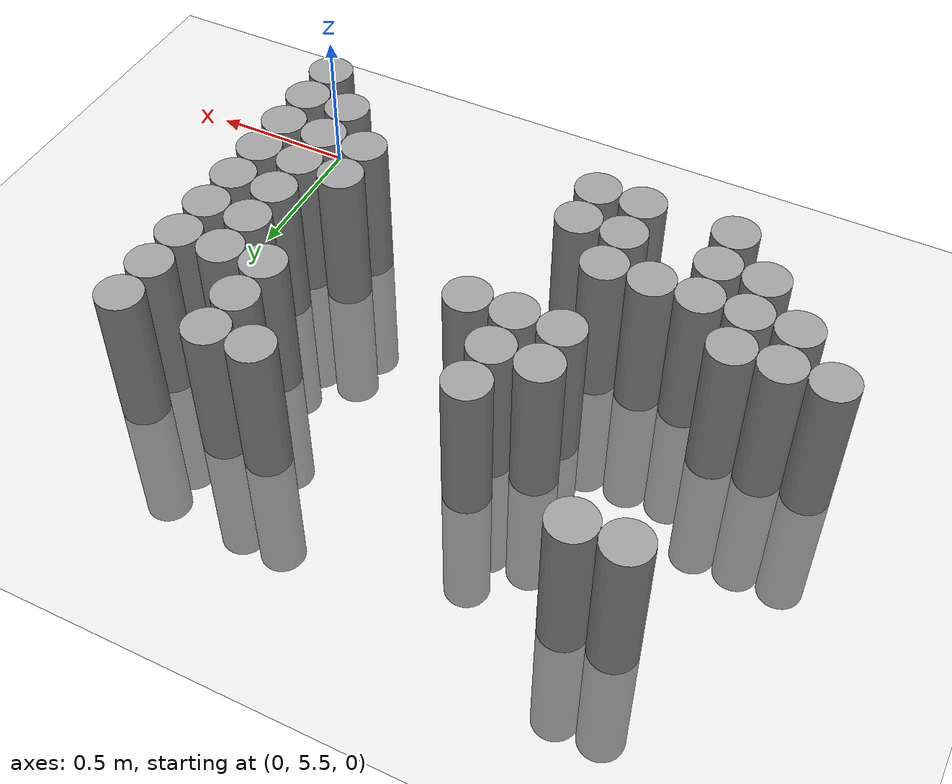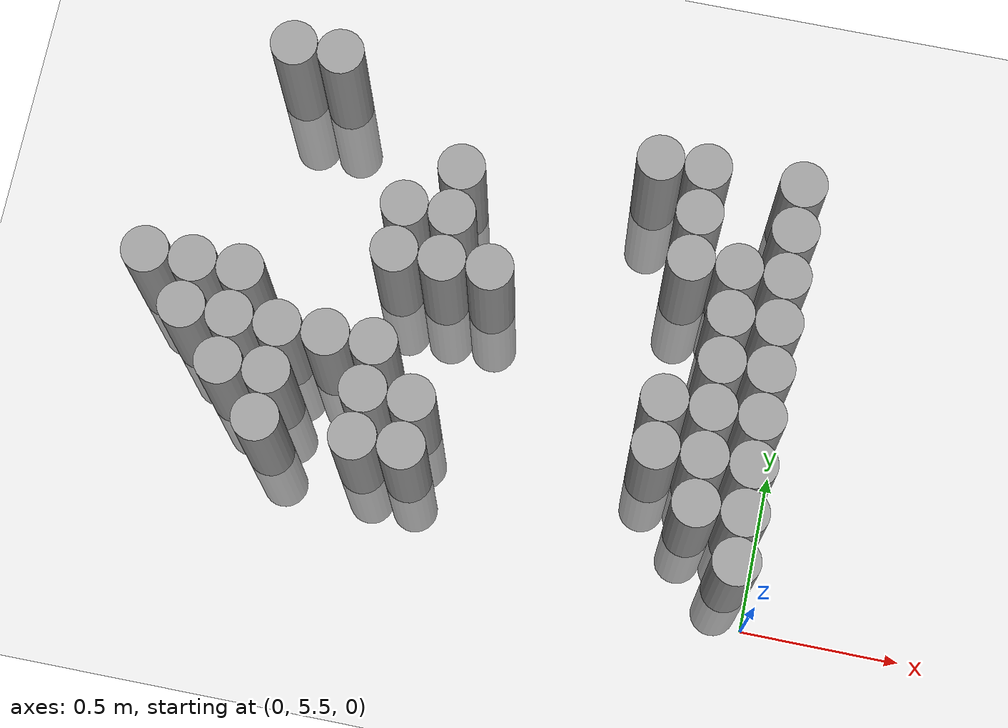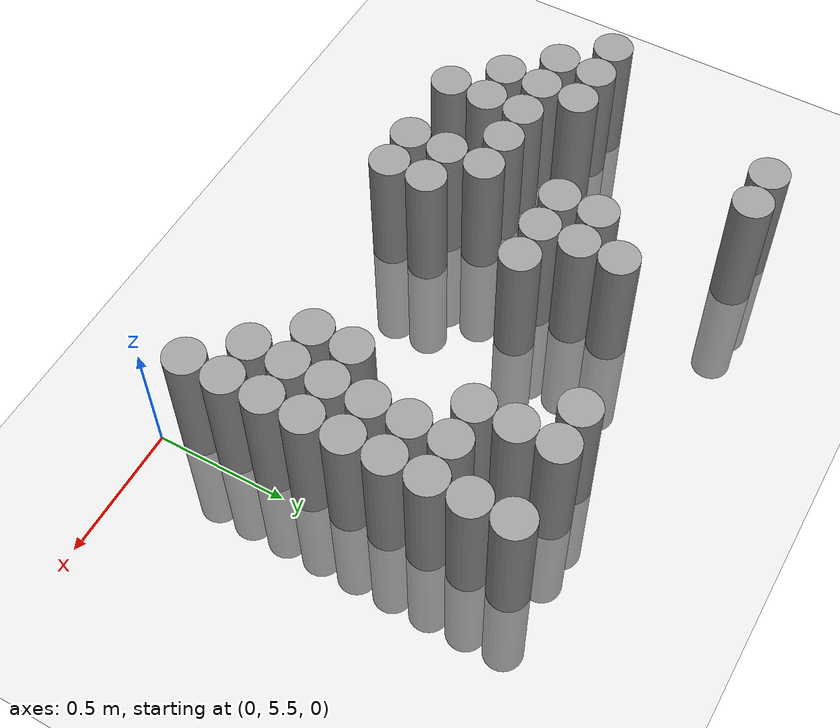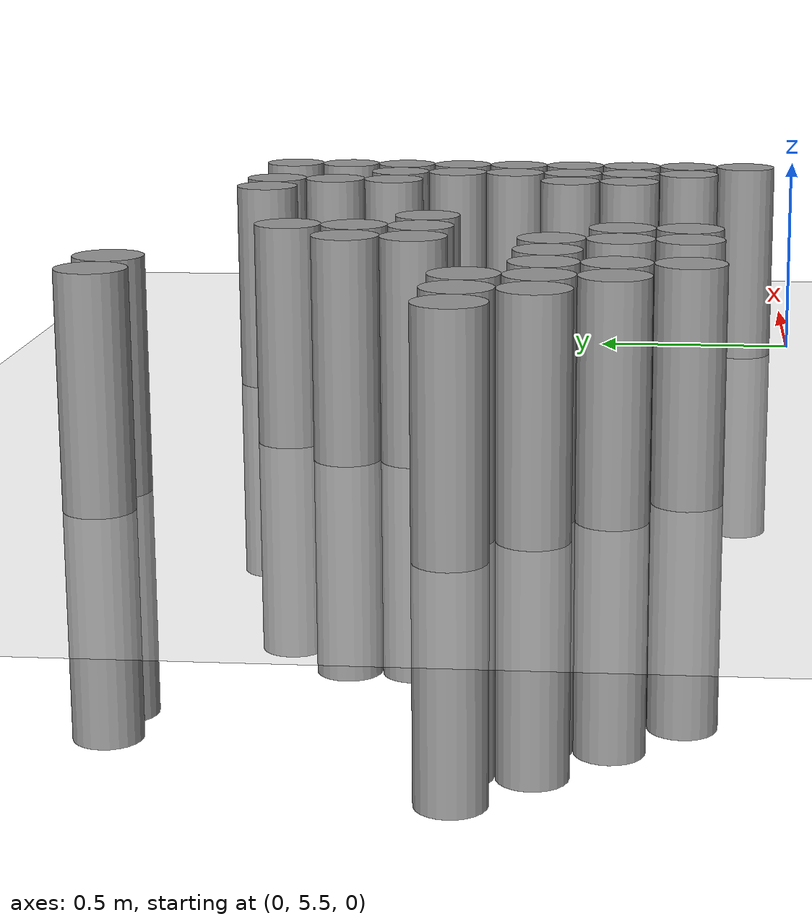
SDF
<sdf version="1.6">
 <world name="default">
  <model name="ground_plane">
   <static>1</static>
   <link name="link">
    <collision name="collision">
     <geometry><plane><normal>0 0 1</normal><size>100 100</size></plane></geometry>
     <surface><friction><ode><mu>100</mu><mu2>50</mu2></ode></friction></surface>
    </collision>
    <visual name="visual">
     <cast_shadows>0</cast_shadows>
     <geometry><plane><normal>0 0 1</normal><size>100 100</size></plane></geometry>
     <material>
      <script><uri>file://media/materials/scripts/gazebo.material</uri><name>Gazebo/Grey</name></script>
     </material>
    </visual>
   </link>
  </model>
  <model name="unit_cylinder_184">
   <pose>-2.025000 6.225000 0.000000 0.000000 0.000000 0.000000</pose>
   <link name="link">
    <inertial>
     <mass>1</mass>
     <inertia><ixx>0.145833</ixx><ixy>0</ixy><ixz>0</ixz><iyy>0.145833</iyy><iyz>0</iyz><izz>0.125</izz></inertia>
    </inertial>
    <collision name="collision">
     <geometry><cylinder><radius>0.075000</radius><length>1</length></cylinder></geometry>
    </collision>
    <visual name="visual">
     <geometry><cylinder><radius>0.075000</radius><length>1</length></cylinder></geometry>
     <material>
      <script><name>Gazebo/Grey</name><uri>file://media/materials/scripts/gazebo.material</uri></script>
     </material>
    </visual>
   </link>
  </model>
  <model name="unit_cylinder_191">
   <pose>-1.875000 6.075000 0.000000 0.000000 0.000000 0.000000</pose>
   <link name="link">
    <inertial>
     <mass>1</mass>
     <inertia><ixx>0.145833</ixx><ixy>0</ixy><ixz>0</ixz><iyy>0.145833</iyy><iyz>0</iyz><izz>0.125</izz></inertia>
    </inertial>
    <collision name="collision">
     <geometry><cylinder><radius>0.075000</radius><length>1</length></cylinder></geometry>
    </collision>
    <visual name="visual">
     <geometry><cylinder><radius>0.075000</radius><length>1</length></cylinder></geometry>
     <material>
      <script><name>Gazebo/Grey</name><uri>file://media/materials/scripts/gazebo.material</uri></script>
     </material>
    </visual>
   </link>
  </model>
  <model name="unit_cylinder_192">
   <pose>-1.875000 6.225000 0.000000 0.000000 0.000000 0.000000</pose>
   <link name="link">
    <inertial>
     <mass>1</mass>
     <inertia><ixx>0.145833</ixx><ixy>0</ixy><ixz>0</ixz><iyy>0.145833</iyy><iyz>0</iyz><izz>0.125</izz></inertia>
    </inertial>
    <collision name="collision">
     <geometry><cylinder><radius>0.075000</radius><length>1</length></cylinder></geometry>
    </collision>
    <visual name="visual">
     <geometry><cylinder><radius>0.075000</radius><length>1</length></cylinder></geometry>
     <material>
      <script><name>Gazebo/Grey</name><uri>file://media/materials/scripts/gazebo.material</uri></script>
     </material>
    </visual>
   </link>
  </model>
  <model name="unit_cylinder_197">
   <pose>-1.725000 5.925000 0.000000 0.000000 0.000000 0.000000</pose>
   <link name="link">
    <inertial>
     <mass>1</mass>
     <inertia><ixx>0.145833</ixx><ixy>0</ixy><ixz>0</ixz><iyy>0.145833</iyy><iyz>0</iyz><izz>0.125</izz></inertia>
    </inertial>
    <collision name="collision">
     <geometry><cylinder><radius>0.075000</radius><length>1</length></cylinder></geometry>
    </collision>
    <visual name="visual">
     <geometry><cylinder><radius>0.075000</radius><length>1</length></cylinder></geometry>
     <material>
      <script><name>Gazebo/Grey</name><uri>file://media/materials/scripts/gazebo.material</uri></script>
     </material>
    </visual>
   </link>
  </model>
  <model name="unit_cylinder_198">
   <pose>-1.725000 6.075000 0.000000 0.000000 0.000000 0.000000</pose>
   <link name="link">
    <inertial>
     <mass>1</mass>
     <inertia><ixx>0.145833</ixx><ixy>0</ixy><ixz>0</ixz><iyy>0.145833</iyy><iyz>0</iyz><izz>0.125</izz></inertia>
    </inertial>
    <collision name="collision">
     <geometry><cylinder><radius>0.075000</radius><length>1</length></cylinder></geometry>
    </collision>
    <visual name="visual">
     <geometry><cylinder><radius>0.075000</radius><length>1</length></cylinder></geometry>
     <material>
      <script><name>Gazebo/Grey</name><uri>file://media/materials/scripts/gazebo.material</uri></script>
     </material>
    </visual>
   </link>
  </model>
  <model name="unit_cylinder_199">
   <pose>-1.725000 6.225000 0.000000 0.000000 0.000000 0.000000</pose>
   <link name="link">
    <inertial>
     <mass>1</mass>
     <inertia><ixx>0.145833</ixx><ixy>0</ixy><ixz>0</ixz><iyy>0.145833</iyy><iyz>0</iyz><izz>0.125</izz></inertia>
    </inertial>
    <collision name="collision">
     <geometry><cylinder><radius>0.075000</radius><length>1</length></cylinder></geometry>
    </collision>
    <visual name="visual">
     <geometry><cylinder><radius>0.075000</radius><length>1</length></cylinder></geometry>
     <material>
      <script><name>Gazebo/Grey</name><uri>file://media/materials/scripts/gazebo.material</uri></script>
     </material>
    </visual>
   </link>
  </model>
  <model name="unit_cylinder_200">
   <pose>-1.725000 6.975000 0.000000 0.000000 0.000000 0.000000</pose>
   <link name="link">
    <inertial>
     <mass>1</mass>
     <inertia><ixx>0.145833</ixx><ixy>0</ixy><ixz>0</ixz><iyy>0.145833</iyy><iyz>0</iyz><izz>0.125</izz></inertia>
    </inertial>
    <collision name="collision">
     <geometry><cylinder><radius>0.075000</radius><length>1</length></cylinder></geometry>
    </collision>
    <visual name="visual">
     <geometry><cylinder><radius>0.075000</radius><length>1</length></cylinder></geometry>
     <material>
      <script><name>Gazebo/Grey</name><uri>file://media/materials/scripts/gazebo.material</uri></script>
     </material>
    </visual>
   </link>
  </model>
  <model name="unit_cylinder_208">
   <pose>-1.575000 5.775000 0.000000 0.000000 0.000000 0.000000</pose>
   <link name="link">
    <inertial>
     <mass>1</mass>
     <inertia><ixx>0.145833</ixx><ixy>0</ixy><ixz>0</ixz><iyy>0.145833</iyy><iyz>0</iyz><izz>0.125</izz></inertia>
    </inertial>
    <collision name="collision">
     <geometry><cylinder><radius>0.075000</radius><length>1</length></cylinder></geometry>
    </collision>
    <visual name="visual">
     <geometry><cylinder><radius>0.075000</radius><length>1</length></cylinder></geometry>
     <material>
      <script><name>Gazebo/Grey</name><uri>file://media/materials/scripts/gazebo.material</uri></script>
     </material>
    </visual>
   </link>
  </model>
  <model name="unit_cylinder_209">
   <pose>-1.575000 5.925000 0.000000 0.000000 0.000000 0.000000</pose>
   <link name="link">
    <inertial>
     <mass>1</mass>
     <inertia><ixx>0.145833</ixx><ixy>0</ixy><ixz>0</ixz><iyy>0.145833</iyy><iyz>0</iyz><izz>0.125</izz></inertia>
    </inertial>
    <collision name="collision">
     <geometry><cylinder><radius>0.075000</radius><length>1</length></cylinder></geometry>
    </collision>
    <visual name="visual">
     <geometry><cylinder><radius>0.075000</radius><length>1</length></cylinder></geometry>
     <material>
      <script><name>Gazebo/Grey</name><uri>file://media/materials/scripts/gazebo.material</uri></script>
     </material>
    </visual>
   </link>
  </model>
  <model name="unit_cylinder_210">
   <pose>-1.575000 6.075000 0.000000 0.000000 0.000000 0.000000</pose>
   <link name="link">
    <inertial>
     <mass>1</mass>
     <inertia><ixx>0.145833</ixx><ixy>0</ixy><ixz>0</ixz><iyy>0.145833</iyy><iyz>0</iyz><izz>0.125</izz></inertia>
    </inertial>
    <collision name="collision">
     <geometry><cylinder><radius>0.075000</radius><length>1</length></cylinder></geometry>
    </collision>
    <visual name="visual">
     <geometry><cylinder><radius>0.075000</radius><length>1</length></cylinder></geometry>
     <material>
      <script><name>Gazebo/Grey</name><uri>file://media/materials/scripts/gazebo.material</uri></script>
     </material>
    </visual>
   </link>
  </model>
  <model name="unit_cylinder_211">
   <pose>-1.575000 6.975000 0.000000 0.000000 0.000000 0.000000</pose>
   <link name="link">
    <inertial>
     <mass>1</mass>
     <inertia><ixx>0.145833</ixx><ixy>0</ixy><ixz>0</ixz><iyy>0.145833</iyy><iyz>0</iyz><izz>0.125</izz></inertia>
    </inertial>
    <collision name="collision">
     <geometry><cylinder><radius>0.075000</radius><length>1</length></cylinder></geometry>
    </collision>
    <visual name="visual">
     <geometry><cylinder><radius>0.075000</radius><length>1</length></cylinder></geometry>
     <material>
      <script><name>Gazebo/Grey</name><uri>file://media/materials/scripts/gazebo.material</uri></script>
     </material>
    </visual>
   </link>
  </model>
  <model name="unit_cylinder_224">
   <pose>-1.425000 6.075000 0.000000 0.000000 0.000000 0.000000</pose>
   <link name="link">
    <inertial>
     <mass>1</mass>
     <inertia><ixx>0.145833</ixx><ixy>0</ixy><ixz>0</ixz><iyy>0.145833</iyy><iyz>0</iyz><izz>0.125</izz></inertia>
    </inertial>
    <collision name="collision">
     <geometry><cylinder><radius>0.075000</radius><length>1</length></cylinder></geometry>
    </collision>
    <visual name="visual">
     <geometry><cylinder><radius>0.075000</radius><length>1</length></cylinder></geometry>
     <material>
      <script><name>Gazebo/Grey</name><uri>file://media/materials/scripts/gazebo.material</uri></script>
     </material>
    </visual>
   </link>
  </model>
  <model name="unit_cylinder_238">
   <pose>-1.275000 5.775000 0.000000 0.000000 0.000000 0.000000</pose>
   <link name="link">
    <inertial>
     <mass>1</mass>
     <inertia><ixx>0.145833</ixx><ixy>0</ixy><ixz>0</ixz><iyy>0.145833</iyy><iyz>0</iyz><izz>0.125</izz></inertia>
    </inertial>
    <collision name="collision">
     <geometry><cylinder><radius>0.075000</radius><length>1</length></cylinder></geometry>
    </collision>
    <visual name="visual">
     <geometry><cylinder><radius>0.075000</radius><length>1</length></cylinder></geometry>
     <material>
      <script><name>Gazebo/Grey</name><uri>file://media/materials/scripts/gazebo.material</uri></script>
     </material>
    </visual>
   </link>
  </model>
  <model name="unit_cylinder_239">
   <pose>-1.275000 5.925000 0.000000 0.000000 0.000000 0.000000</pose>
   <link name="link">
    <inertial>
     <mass>1</mass>
     <inertia><ixx>0.145833</ixx><ixy>0</ixy><ixz>0</ixz><iyy>0.145833</iyy><iyz>0</iyz><izz>0.125</izz></inertia>
    </inertial>
    <collision name="collision">
     <geometry><cylinder><radius>0.075000</radius><length>1</length></cylinder></geometry>
    </collision>
    <visual name="visual">
     <geometry><cylinder><radius>0.075000</radius><length>1</length></cylinder></geometry>
     <material>
      <script><name>Gazebo/Grey</name><uri>file://media/materials/scripts/gazebo.material</uri></script>
     </material>
    </visual>
   </link>
  </model>
  <model name="unit_cylinder_240">
   <pose>-1.275000 6.075000 0.000000 0.000000 0.000000 0.000000</pose>
   <link name="link">
    <inertial>
     <mass>1</mass>
     <inertia><ixx>0.145833</ixx><ixy>0</ixy><ixz>0</ixz><iyy>0.145833</iyy><iyz>0</iyz><izz>0.125</izz></inertia>
    </inertial>
    <collision name="collision">
     <geometry><cylinder><radius>0.075000</radius><length>1</length></cylinder></geometry>
    </collision>
    <visual name="visual">
     <geometry><cylinder><radius>0.075000</radius><length>1</length></cylinder></geometry>
     <material>
      <script><name>Gazebo/Grey</name><uri>file://media/materials/scripts/gazebo.material</uri></script>
     </material>
    </visual>
   </link>
  </model>
  <model name="unit_cylinder_241">
   <pose>-1.275000 6.375000 0.000000 0.000000 0.000000 0.000000</pose>
   <link name="link">
    <inertial>
     <mass>1</mass>
     <inertia><ixx>0.145833</ixx><ixy>0</ixy><ixz>0</ixz><iyy>0.145833</iyy><iyz>0</iyz><izz>0.125</izz></inertia>
    </inertial>
    <collision name="collision">
     <geometry><cylinder><radius>0.075000</radius><length>1</length></cylinder></geometry>
    </collision>
    <visual name="visual">
     <geometry><cylinder><radius>0.075000</radius><length>1</length></cylinder></geometry>
     <material>
      <script><name>Gazebo/Grey</name><uri>file://media/materials/scripts/gazebo.material</uri></script>
     </material>
    </visual>
   </link>
  </model>
  <model name="unit_cylinder_242">
   <pose>-1.275000 6.525000 0.000000 0.000000 0.000000 0.000000</pose>
   <link name="link">
    <inertial>
     <mass>1</mass>
     <inertia><ixx>0.145833</ixx><ixy>0</ixy><ixz>0</ixz><iyy>0.145833</iyy><iyz>0</iyz><izz>0.125</izz></inertia>
    </inertial>
    <collision name="collision">
     <geometry><cylinder><radius>0.075000</radius><length>1</length></cylinder></geometry>
    </collision>
    <visual name="visual">
     <geometry><cylinder><radius>0.075000</radius><length>1</length></cylinder></geometry>
     <material>
      <script><name>Gazebo/Grey</name><uri>file://media/materials/scripts/gazebo.material</uri></script>
     </material>
    </visual>
   </link>
  </model>
  <model name="unit_cylinder_249">
   <pose>-1.125000 5.775000 0.000000 0.000000 0.000000 0.000000</pose>
   <link name="link">
    <inertial>
     <mass>1</mass>
     <inertia><ixx>0.145833</ixx><ixy>0</ixy><ixz>0</ixz><iyy>0.145833</iyy><iyz>0</iyz><izz>0.125</izz></inertia>
    </inertial>
    <collision name="collision">
     <geometry><cylinder><radius>0.075000</radius><length>1</length></cylinder></geometry>
    </collision>
    <visual name="visual">
     <geometry><cylinder><radius>0.075000</radius><length>1</length></cylinder></geometry>
     <material>
      <script><name>Gazebo/Grey</name><uri>file://media/materials/scripts/gazebo.material</uri></script>
     </material>
    </visual>
   </link>
  </model>
  <model name="unit_cylinder_250">
   <pose>-1.125000 5.925000 0.000000 0.000000 0.000000 0.000000</pose>
   <link name="link">
    <inertial>
     <mass>1</mass>
     <inertia><ixx>0.145833</ixx><ixy>0</ixy><ixz>0</ixz><iyy>0.145833</iyy><iyz>0</iyz><izz>0.125</izz></inertia>
    </inertial>
    <collision name="collision">
     <geometry><cylinder><radius>0.075000</radius><length>1</length></cylinder></geometry>
    </collision>
    <visual name="visual">
     <geometry><cylinder><radius>0.075000</radius><length>1</length></cylinder></geometry>
     <material>
      <script><name>Gazebo/Grey</name><uri>file://media/materials/scripts/gazebo.material</uri></script>
     </material>
    </visual>
   </link>
  </model>
  <model name="unit_cylinder_251">
   <pose>-1.125000 6.375000 0.000000 0.000000 0.000000 0.000000</pose>
   <link name="link">
    <inertial>
     <mass>1</mass>
     <inertia><ixx>0.145833</ixx><ixy>0</ixy><ixz>0</ixz><iyy>0.145833</iyy><iyz>0</iyz><izz>0.125</izz></inertia>
    </inertial>
    <collision name="collision">
     <geometry><cylinder><radius>0.075000</radius><length>1</length></cylinder></geometry>
    </collision>
    <visual name="visual">
     <geometry><cylinder><radius>0.075000</radius><length>1</length></cylinder></geometry>
     <material>
      <script><name>Gazebo/Grey</name><uri>file://media/materials/scripts/gazebo.material</uri></script>
     </material>
    </visual>
   </link>
  </model>
  <model name="unit_cylinder_252">
   <pose>-1.125000 6.525000 0.000000 0.000000 0.000000 0.000000</pose>
   <link name="link">
    <inertial>
     <mass>1</mass>
     <inertia><ixx>0.145833</ixx><ixy>0</ixy><ixz>0</ixz><iyy>0.145833</iyy><iyz>0</iyz><izz>0.125</izz></inertia>
    </inertial>
    <collision name="collision">
     <geometry><cylinder><radius>0.075000</radius><length>1</length></cylinder></geometry>
    </collision>
    <visual name="visual">
     <geometry><cylinder><radius>0.075000</radius><length>1</length></cylinder></geometry>
     <material>
      <script><name>Gazebo/Grey</name><uri>file://media/materials/scripts/gazebo.material</uri></script>
     </material>
    </visual>
   </link>
  </model>
  <model name="unit_cylinder_253">
   <pose>-1.125000 6.675000 0.000000 0.000000 0.000000 0.000000</pose>
   <link name="link">
    <inertial>
     <mass>1</mass>
     <inertia><ixx>0.145833</ixx><ixy>0</ixy><ixz>0</ixz><iyy>0.145833</iyy><iyz>0</iyz><izz>0.125</izz></inertia>
    </inertial>
    <collision name="collision">
     <geometry><cylinder><radius>0.075000</radius><length>1</length></cylinder></geometry>
    </collision>
    <visual name="visual">
     <geometry><cylinder><radius>0.075000</radius><length>1</length></cylinder></geometry>
     <material>
      <script><name>Gazebo/Grey</name><uri>file://media/materials/scripts/gazebo.material</uri></script>
     </material>
    </visual>
   </link>
  </model>
  <model name="unit_cylinder_254">
   <pose>-0.975000 6.375000 0.000000 0.000000 0.000000 0.000000</pose>
   <link name="link">
    <inertial>
     <mass>1</mass>
     <inertia><ixx>0.145833</ixx><ixy>0</ixy><ixz>0</ixz><iyy>0.145833</iyy><iyz>0</iyz><izz>0.125</izz></inertia>
    </inertial>
    <collision name="collision">
     <geometry><cylinder><radius>0.075000</radius><length>1</length></cylinder></geometry>
    </collision>
    <visual name="visual">
     <geometry><cylinder><radius>0.075000</radius><length>1</length></cylinder></geometry>
     <material>
      <script><name>Gazebo/Grey</name><uri>file://media/materials/scripts/gazebo.material</uri></script>
     </material>
    </visual>
   </link>
  </model>
  <model name="unit_cylinder_263">
   <pose>-0.525000 6.825000 0.000000 0.000000 0.000000 0.000000</pose>
   <link name="link">
    <inertial>
     <mass>1</mass>
     <inertia><ixx>0.145833</ixx><ixy>0</ixy><ixz>0</ixz><iyy>0.145833</iyy><iyz>0</iyz><izz>0.125</izz></inertia>
    </inertial>
    <collision name="collision">
     <geometry><cylinder><radius>0.075000</radius><length>1</length></cylinder></geometry>
    </collision>
    <visual name="visual">
     <geometry><cylinder><radius>0.075000</radius><length>1</length></cylinder></geometry>
     <material>
      <script><name>Gazebo/Grey</name><uri>file://media/materials/scripts/gazebo.material</uri></script>
     </material>
    </visual>
   </link>
  </model>
  <model name="unit_cylinder_270">
   <pose>-0.375000 5.925000 0.000000 0.000000 0.000000 0.000000</pose>
   <link name="link">
    <inertial>
     <mass>1</mass>
     <inertia><ixx>0.145833</ixx><ixy>0</ixy><ixz>0</ixz><iyy>0.145833</iyy><iyz>0</iyz><izz>0.125</izz></inertia>
    </inertial>
    <collision name="collision">
     <geometry><cylinder><radius>0.075000</radius><length>1</length></cylinder></geometry>
    </collision>
    <visual name="visual">
     <geometry><cylinder><radius>0.075000</radius><length>1</length></cylinder></geometry>
     <material>
      <script><name>Gazebo/Grey</name><uri>file://media/materials/scripts/gazebo.material</uri></script>
     </material>
    </visual>
   </link>
  </model>
  <model name="unit_cylinder_271">
   <pose>-0.375000 6.075000 0.000000 0.000000 0.000000 0.000000</pose>
   <link name="link">
    <inertial>
     <mass>1</mass>
     <inertia><ixx>0.145833</ixx><ixy>0</ixy><ixz>0</ixz><iyy>0.145833</iyy><iyz>0</iyz><izz>0.125</izz></inertia>
    </inertial>
    <collision name="collision">
     <geometry><cylinder><radius>0.075000</radius><length>1</length></cylinder></geometry>
    </collision>
    <visual name="visual">
     <geometry><cylinder><radius>0.075000</radius><length>1</length></cylinder></geometry>
     <material>
      <script><name>Gazebo/Grey</name><uri>file://media/materials/scripts/gazebo.material</uri></script>
     </material>
    </visual>
   </link>
  </model>
  <model name="unit_cylinder_272">
   <pose>-0.375000 6.525000 0.000000 0.000000 0.000000 0.000000</pose>
   <link name="link">
    <inertial>
     <mass>1</mass>
     <inertia><ixx>0.145833</ixx><ixy>0</ixy><ixz>0</ixz><iyy>0.145833</iyy><iyz>0</iyz><izz>0.125</izz></inertia>
    </inertial>
    <collision name="collision">
     <geometry><cylinder><radius>0.075000</radius><length>1</length></cylinder></geometry>
    </collision>
    <visual name="visual">
     <geometry><cylinder><radius>0.075000</radius><length>1</length></cylinder></geometry>
     <material>
      <script><name>Gazebo/Grey</name><uri>file://media/materials/scripts/gazebo.material</uri></script>
     </material>
    </visual>
   </link>
  </model>
  <model name="unit_cylinder_273">
   <pose>-0.375000 6.675000 0.000000 0.000000 0.000000 0.000000</pose>
   <link name="link">
    <inertial>
     <mass>1</mass>
     <inertia><ixx>0.145833</ixx><ixy>0</ixy><ixz>0</ixz><iyy>0.145833</iyy><iyz>0</iyz><izz>0.125</izz></inertia>
    </inertial>
    <collision name="collision">
     <geometry><cylinder><radius>0.075000</radius><length>1</length></cylinder></geometry>
    </collision>
    <visual name="visual">
     <geometry><cylinder><radius>0.075000</radius><length>1</length></cylinder></geometry>
     <material>
      <script><name>Gazebo/Grey</name><uri>file://media/materials/scripts/gazebo.material</uri></script>
     </material>
    </visual>
   </link>
  </model>
  <model name="unit_cylinder_274">
   <pose>-0.375000 6.825000 0.000000 0.000000 0.000000 0.000000</pose>
   <link name="link">
    <inertial>
     <mass>1</mass>
     <inertia><ixx>0.145833</ixx><ixy>0</ixy><ixz>0</ixz><iyy>0.145833</iyy><iyz>0</iyz><izz>0.125</izz></inertia>
    </inertial>
    <collision name="collision">
     <geometry><cylinder><radius>0.075000</radius><length>1</length></cylinder></geometry>
    </collision>
    <visual name="visual">
     <geometry><cylinder><radius>0.075000</radius><length>1</length></cylinder></geometry>
     <material>
      <script><name>Gazebo/Grey</name><uri>file://media/materials/scripts/gazebo.material</uri></script>
     </material>
    </visual>
   </link>
  </model>
  <model name="unit_cylinder_284">
   <pose>-0.225000 5.775000 0.000000 0.000000 0.000000 0.000000</pose>
   <link name="link">
    <inertial>
     <mass>1</mass>
     <inertia><ixx>0.145833</ixx><ixy>0</ixy><ixz>0</ixz><iyy>0.145833</iyy><iyz>0</iyz><izz>0.125</izz></inertia>
    </inertial>
    <collision name="collision">
     <geometry><cylinder><radius>0.075000</radius><length>1</length></cylinder></geometry>
    </collision>
    <visual name="visual">
     <geometry><cylinder><radius>0.075000</radius><length>1</length></cylinder></geometry>
     <material>
      <script><name>Gazebo/Grey</name><uri>file://media/materials/scripts/gazebo.material</uri></script>
     </material>
    </visual>
   </link>
  </model>
  <model name="unit_cylinder_285">
   <pose>-0.225000 5.925000 0.000000 0.000000 0.000000 0.000000</pose>
   <link name="link">
    <inertial>
     <mass>1</mass>
     <inertia><ixx>0.145833</ixx><ixy>0</ixy><ixz>0</ixz><iyy>0.145833</iyy><iyz>0</iyz><izz>0.125</izz></inertia>
    </inertial>
    <collision name="collision">
     <geometry><cylinder><radius>0.075000</radius><length>1</length></cylinder></geometry>
    </collision>
    <visual name="visual">
     <geometry><cylinder><radius>0.075000</radius><length>1</length></cylinder></geometry>
     <material>
      <script><name>Gazebo/Grey</name><uri>file://media/materials/scripts/gazebo.material</uri></script>
     </material>
    </visual>
   </link>
  </model>
  <model name="unit_cylinder_286">
   <pose>-0.225000 6.075000 0.000000 0.000000 0.000000 0.000000</pose>
   <link name="link">
    <inertial>
     <mass>1</mass>
     <inertia><ixx>0.145833</ixx><ixy>0</ixy><ixz>0</ixz><iyy>0.145833</iyy><iyz>0</iyz><izz>0.125</izz></inertia>
    </inertial>
    <collision name="collision">
     <geometry><cylinder><radius>0.075000</radius><length>1</length></cylinder></geometry>
    </collision>
    <visual name="visual">
     <geometry><cylinder><radius>0.075000</radius><length>1</length></cylinder></geometry>
     <material>
      <script><name>Gazebo/Grey</name><uri>file://media/materials/scripts/gazebo.material</uri></script>
     </material>
    </visual>
   </link>
  </model>
  <model name="unit_cylinder_287">
   <pose>-0.225000 6.225000 0.000000 0.000000 0.000000 0.000000</pose>
   <link name="link">
    <inertial>
     <mass>1</mass>
     <inertia><ixx>0.145833</ixx><ixy>0</ixy><ixz>0</ixz><iyy>0.145833</iyy><iyz>0</iyz><izz>0.125</izz></inertia>
    </inertial>
    <collision name="collision">
     <geometry><cylinder><radius>0.075000</radius><length>1</length></cylinder></geometry>
    </collision>
    <visual name="visual">
     <geometry><cylinder><radius>0.075000</radius><length>1</length></cylinder></geometry>
     <material>
      <script><name>Gazebo/Grey</name><uri>file://media/materials/scripts/gazebo.material</uri></script>
     </material>
    </visual>
   </link>
  </model>
  <model name="unit_cylinder_288">
   <pose>-0.225000 6.375000 0.000000 0.000000 0.000000 0.000000</pose>
   <link name="link">
    <inertial>
     <mass>1</mass>
     <inertia><ixx>0.145833</ixx><ixy>0</ixy><ixz>0</ixz><iyy>0.145833</iyy><iyz>0</iyz><izz>0.125</izz></inertia>
    </inertial>
    <collision name="collision">
     <geometry><cylinder><radius>0.075000</radius><length>1</length></cylinder></geometry>
    </collision>
    <visual name="visual">
     <geometry><cylinder><radius>0.075000</radius><length>1</length></cylinder></geometry>
     <material>
      <script><name>Gazebo/Grey</name><uri>file://media/materials/scripts/gazebo.material</uri></script>
     </material>
    </visual>
   </link>
  </model>
  <model name="unit_cylinder_289">
   <pose>-0.225000 6.525000 0.000000 0.000000 0.000000 0.000000</pose>
   <link name="link">
    <inertial>
     <mass>1</mass>
     <inertia><ixx>0.145833</ixx><ixy>0</ixy><ixz>0</ixz><iyy>0.145833</iyy><iyz>0</iyz><izz>0.125</izz></inertia>
    </inertial>
    <collision name="collision">
     <geometry><cylinder><radius>0.075000</radius><length>1</length></cylinder></geometry>
    </collision>
    <visual name="visual">
     <geometry><cylinder><radius>0.075000</radius><length>1</length></cylinder></geometry>
     <material>
      <script><name>Gazebo/Grey</name><uri>file://media/materials/scripts/gazebo.material</uri></script>
     </material>
    </visual>
   </link>
  </model>
  <model name="unit_cylinder_304">
   <pose>-0.075000 5.625000 0.000000 0.000000 0.000000 0.000000</pose>
   <link name="link">
    <inertial>
     <mass>1</mass>
     <inertia><ixx>0.145833</ixx><ixy>0</ixy><ixz>0</ixz><iyy>0.145833</iyy><iyz>0</iyz><izz>0.125</izz></inertia>
    </inertial>
    <collision name="collision">
     <geometry><cylinder><radius>0.075000</radius><length>1</length></cylinder></geometry>
    </collision>
    <visual name="visual">
     <geometry><cylinder><radius>0.075000</radius><length>1</length></cylinder></geometry>
     <material>
      <script><name>Gazebo/Grey</name><uri>file://media/materials/scripts/gazebo.material</uri></script>
     </material>
    </visual>
   </link>
  </model>
  <model name="unit_cylinder_305">
   <pose>-0.075000 5.775000 0.000000 0.000000 0.000000 0.000000</pose>
   <link name="link">
    <inertial>
     <mass>1</mass>
     <inertia><ixx>0.145833</ixx><ixy>0</ixy><ixz>0</ixz><iyy>0.145833</iyy><iyz>0</iyz><izz>0.125</izz></inertia>
    </inertial>
    <collision name="collision">
     <geometry><cylinder><radius>0.075000</radius><length>1</length></cylinder></geometry>
    </collision>
    <visual name="visual">
     <geometry><cylinder><radius>0.075000</radius><length>1</length></cylinder></geometry>
     <material>
      <script><name>Gazebo/Grey</name><uri>file://media/materials/scripts/gazebo.material</uri></script>
     </material>
    </visual>
   </link>
  </model>
  <model name="unit_cylinder_306">
   <pose>-0.075000 5.925000 0.000000 0.000000 0.000000 0.000000</pose>
   <link name="link">
    <inertial>
     <mass>1</mass>
     <inertia><ixx>0.145833</ixx><ixy>0</ixy><ixz>0</ixz><iyy>0.145833</iyy><iyz>0</iyz><izz>0.125</izz></inertia>
    </inertial>
    <collision name="collision">
     <geometry><cylinder><radius>0.075000</radius><length>1</length></cylinder></geometry>
    </collision>
    <visual name="visual">
     <geometry><cylinder><radius>0.075000</radius><length>1</length></cylinder></geometry>
     <material>
      <script><name>Gazebo/Grey</name><uri>file://media/materials/scripts/gazebo.material</uri></script>
     </material>
    </visual>
   </link>
  </model>
  <model name="unit_cylinder_307">
   <pose>-0.075000 6.075000 0.000000 0.000000 0.000000 0.000000</pose>
   <link name="link">
    <inertial>
     <mass>1</mass>
     <inertia><ixx>0.145833</ixx><ixy>0</ixy><ixz>0</ixz><iyy>0.145833</iyy><iyz>0</iyz><izz>0.125</izz></inertia>
    </inertial>
    <collision name="collision">
     <geometry><cylinder><radius>0.075000</radius><length>1</length></cylinder></geometry>
    </collision>
    <visual name="visual">
     <geometry><cylinder><radius>0.075000</radius><length>1</length></cylinder></geometry>
     <material>
      <script><name>Gazebo/Grey</name><uri>file://media/materials/scripts/gazebo.material</uri></script>
     </material>
    </visual>
   </link>
  </model>
  <model name="unit_cylinder_308">
   <pose>-0.075000 6.225000 0.000000 0.000000 0.000000 0.000000</pose>
   <link name="link">
    <inertial>
     <mass>1</mass>
     <inertia><ixx>0.145833</ixx><ixy>0</ixy><ixz>0</ixz><iyy>0.145833</iyy><iyz>0</iyz><izz>0.125</izz></inertia>
    </inertial>
    <collision name="collision">
     <geometry><cylinder><radius>0.075000</radius><length>1</length></cylinder></geometry>
    </collision>
    <visual name="visual">
     <geometry><cylinder><radius>0.075000</radius><length>1</length></cylinder></geometry>
     <material>
      <script><name>Gazebo/Grey</name><uri>file://media/materials/scripts/gazebo.material</uri></script>
     </material>
    </visual>
   </link>
  </model>
  <model name="unit_cylinder_309">
   <pose>-0.075000 6.375000 0.000000 0.000000 0.000000 0.000000</pose>
   <link name="link">
    <inertial>
     <mass>1</mass>
     <inertia><ixx>0.145833</ixx><ixy>0</ixy><ixz>0</ixz><iyy>0.145833</iyy><iyz>0</iyz><izz>0.125</izz></inertia>
    </inertial>
    <collision name="collision">
     <geometry><cylinder><radius>0.075000</radius><length>1</length></cylinder></geometry>
    </collision>
    <visual name="visual">
     <geometry><cylinder><radius>0.075000</radius><length>1</length></cylinder></geometry>
     <material>
      <script><name>Gazebo/Grey</name><uri>file://media/materials/scripts/gazebo.material</uri></script>
     </material>
    </visual>
   </link>
  </model>
  <model name="unit_cylinder_310">
   <pose>-0.075000 6.525000 0.000000 0.000000 0.000000 0.000000</pose>
   <link name="link">
    <inertial>
     <mass>1</mass>
     <inertia><ixx>0.145833</ixx><ixy>0</ixy><ixz>0</ixz><iyy>0.145833</iyy><iyz>0</iyz><izz>0.125</izz></inertia>
    </inertial>
    <collision name="collision">
     <geometry><cylinder><radius>0.075000</radius><length>1</length></cylinder></geometry>
    </collision>
    <visual name="visual">
     <geometry><cylinder><radius>0.075000</radius><length>1</length></cylinder></geometry>
     <material>
      <script><name>Gazebo/Grey</name><uri>file://media/materials/scripts/gazebo.material</uri></script>
     </material>
    </visual>
   </link>
  </model>
  <model name="unit_cylinder_311">
   <pose>-0.075000 6.675000 0.000000 0.000000 0.000000 0.000000</pose>
   <link name="link">
    <inertial>
     <mass>1</mass>
     <inertia><ixx>0.145833</ixx><ixy>0</ixy><ixz>0</ixz><iyy>0.145833</iyy><iyz>0</iyz><izz>0.125</izz></inertia>
    </inertial>
    <collision name="collision">
     <geometry><cylinder><radius>0.075000</radius><length>1</length></cylinder></geometry>
    </collision>
    <visual name="visual">
     <geometry><cylinder><radius>0.075000</radius><length>1</length></cylinder></geometry>
     <material>
      <script><name>Gazebo/Grey</name><uri>file://media/materials/scripts/gazebo.material</uri></script>
     </material>
    </visual>
   </link>
  </model>
  <model name="unit_cylinder_312">
   <pose>-0.075000 6.825000 0.000000 0.000000 0.000000 0.000000</pose>
   <link name="link">
    <inertial>
     <mass>1</mass>
     <inertia><ixx>0.145833</ixx><ixy>0</ixy><ixz>0</ixz><iyy>0.145833</iyy><iyz>0</iyz><izz>0.125</izz></inertia>
    </inertial>
    <collision name="collision">
     <geometry><cylinder><radius>0.075000</radius><length>1</length></cylinder></geometry>
    </collision>
    <visual name="visual">
     <geometry><cylinder><radius>0.075000</radius><length>1</length></cylinder></geometry>
     <material>
      <script><name>Gazebo/Grey</name><uri>file://media/materials/scripts/gazebo.material</uri></script>
     </material>
    </visual>
   </link>
  </model>
 </world>
</sdf>
